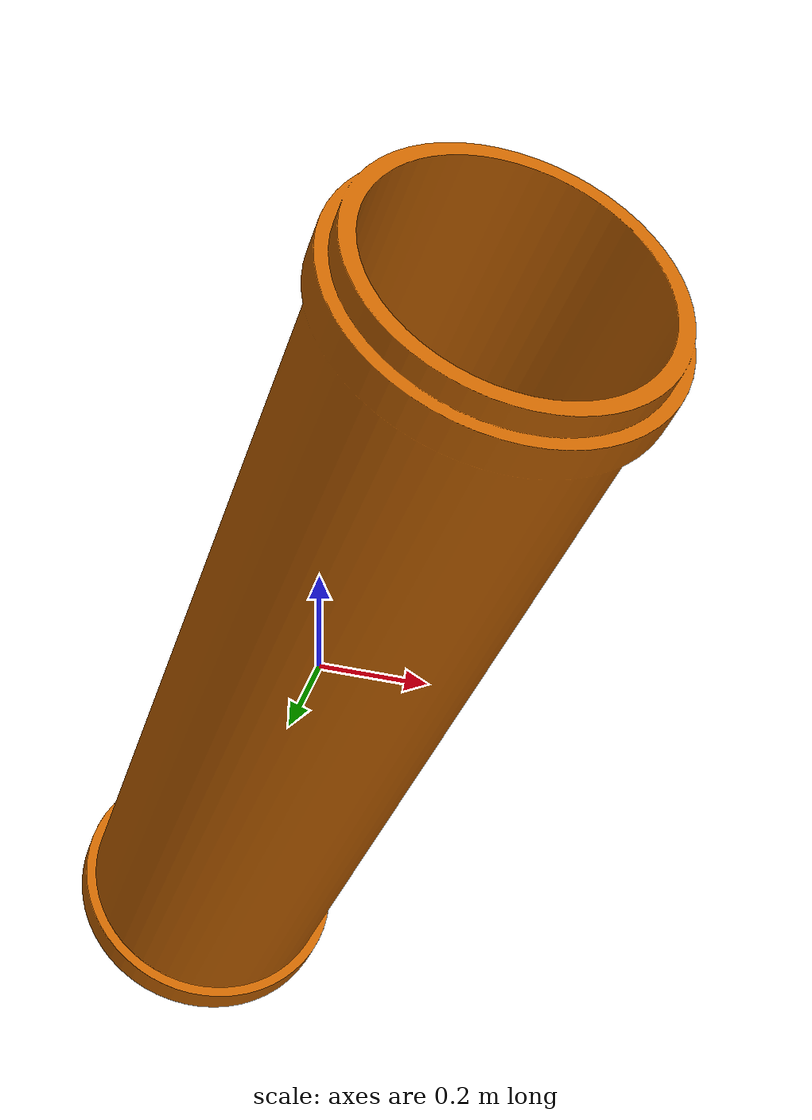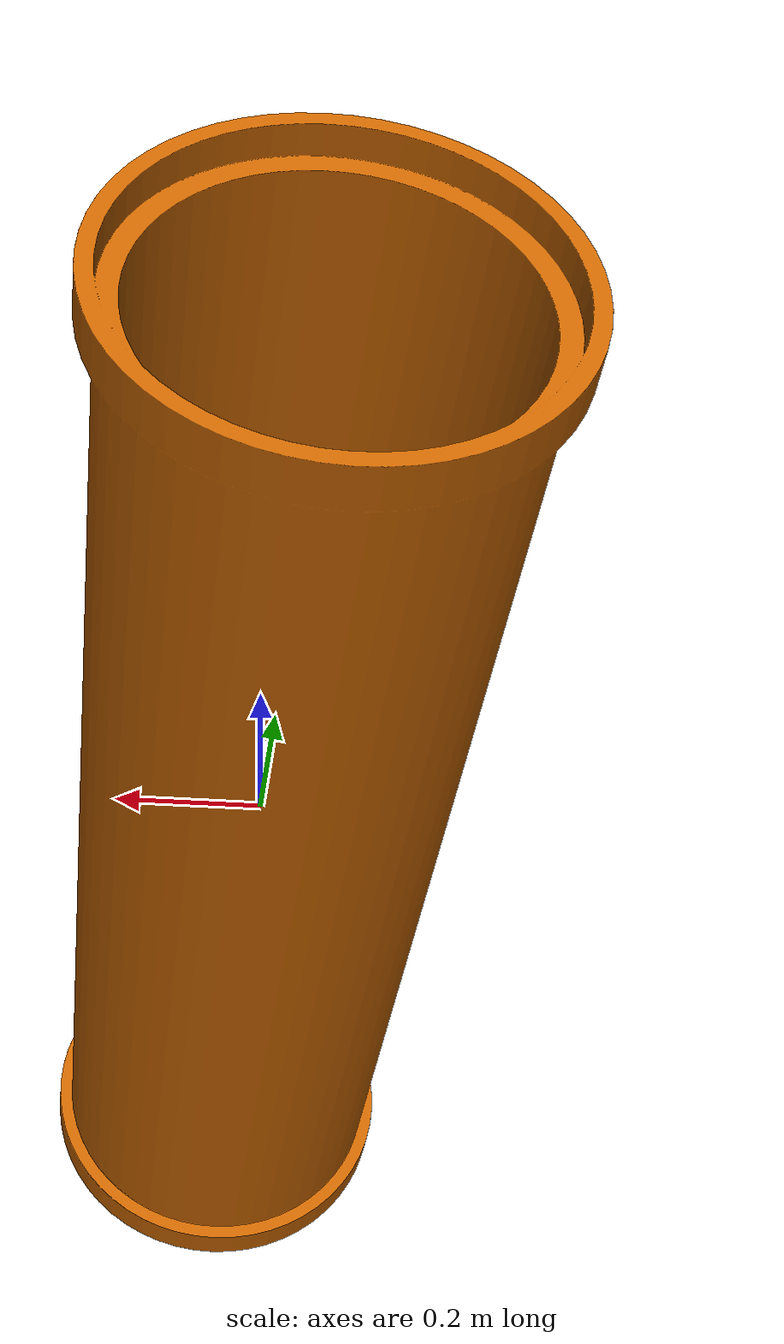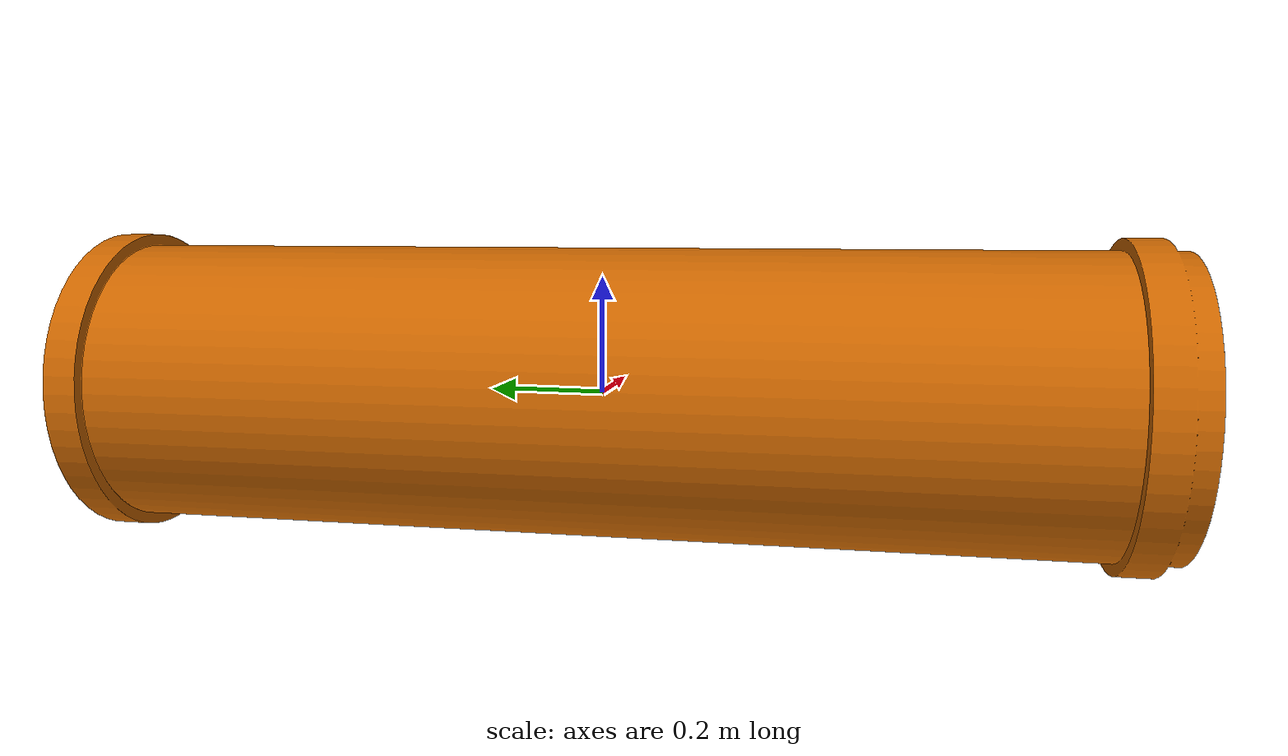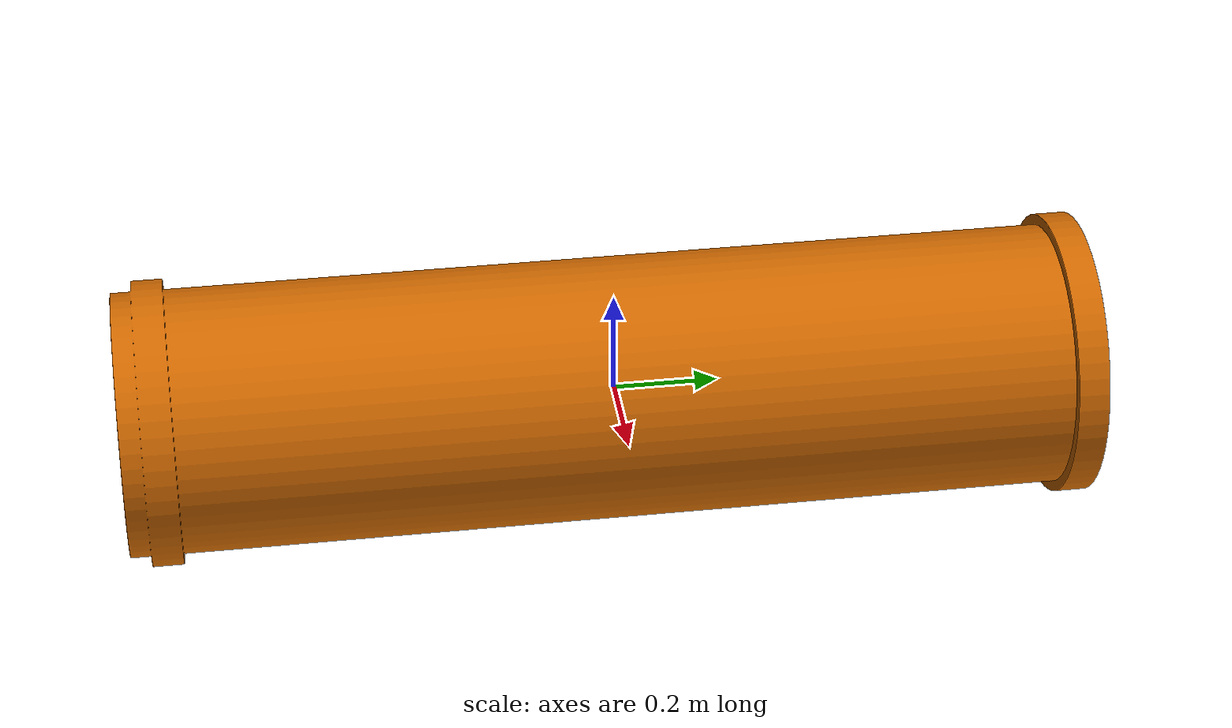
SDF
<?xml version='1.0'?>
<sdf version="1.4">
  <model name="pipe">
    <pose>0 0 0 0 0 0</pose>
    <static>true</static>
    <link name="link">
      <inertial>
        <mass>1.0</mass>
        <inertia> <!-- inertias are tricky to compute -->
          <!-- http://gazebosim.org/tutorials?tut=inertia&cat=build_robot -->
          <ixx>0.083</ixx>       <!-- for a box: ixx = 0.083 * mass * (y*y + z*z) -->
          <ixy>0.0</ixy>         <!-- for a box: ixy = 0 -->
          <ixz>0.0</ixz>         <!-- for a box: ixz = 0 -->
          <iyy>0.083</iyy>       <!-- for a box: iyy = 0.083 * mass * (x*x + z*z) -->
          <iyz>0.0</iyz>         <!-- for a box: iyz = 0 -->
          <izz>0.083</izz>       <!-- for a box: izz = 0.083 * mass * (x*x + y*y) -->
        </inertia>
      </inertial>
      <collision name="collision">
        <geometry>
          <mesh><uri>model://pipe/meshes/pipe.dae</uri></mesh>
        </geometry>
      </collision>
      <visual name="visual">
        <material> <!-- Wheel material -->
         <ambient>.8 0.4 0 1</ambient>
         <diffuse>.8 0.4 0 1</diffuse>
         <specular>0.4 0.4 0.4 .2</specular>
         <emissive>0 0 0 1</emissive>
       </material>
        <geometry>
          <mesh><uri>model://pipe/meshes/pipe.dae</uri></mesh>
        </geometry>

      </visual>
    </link>

  </model>
</sdf>
